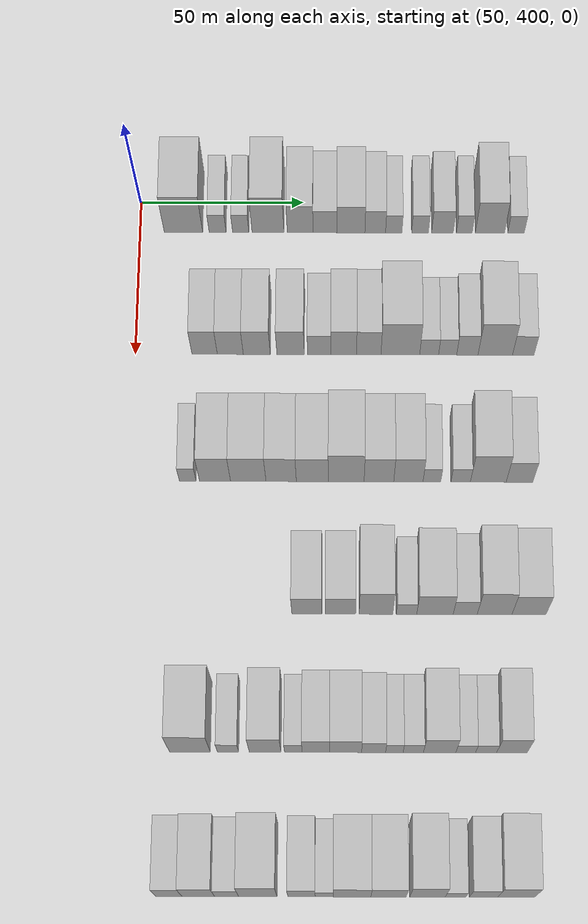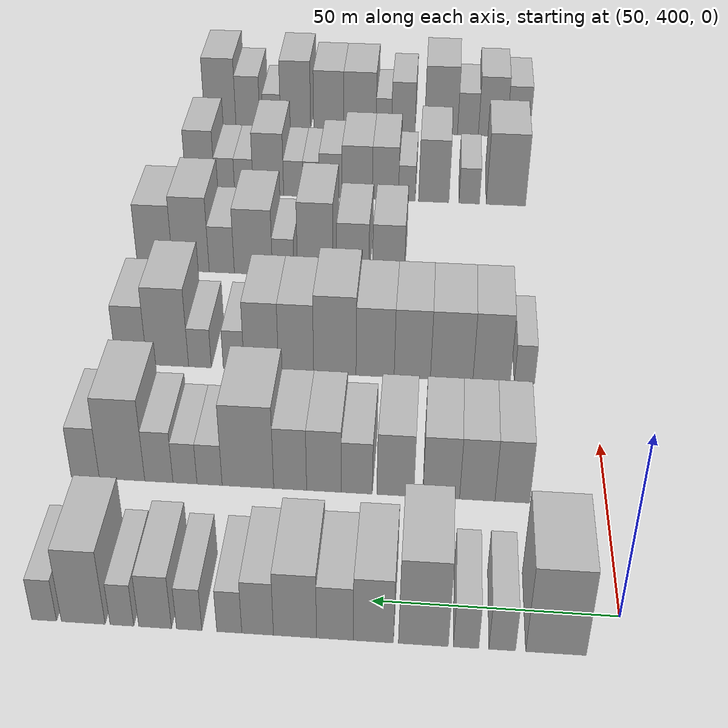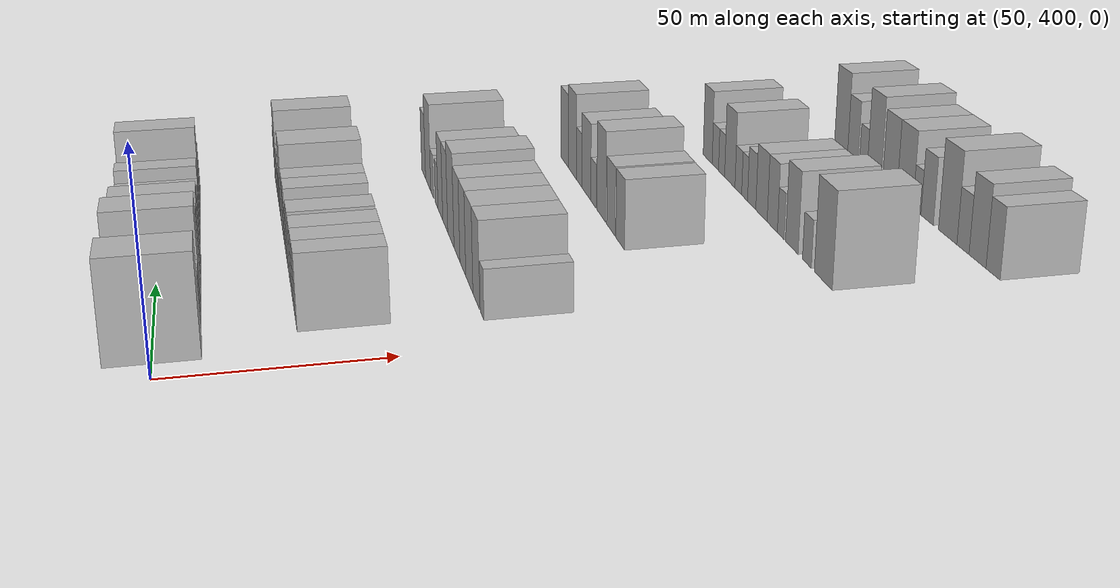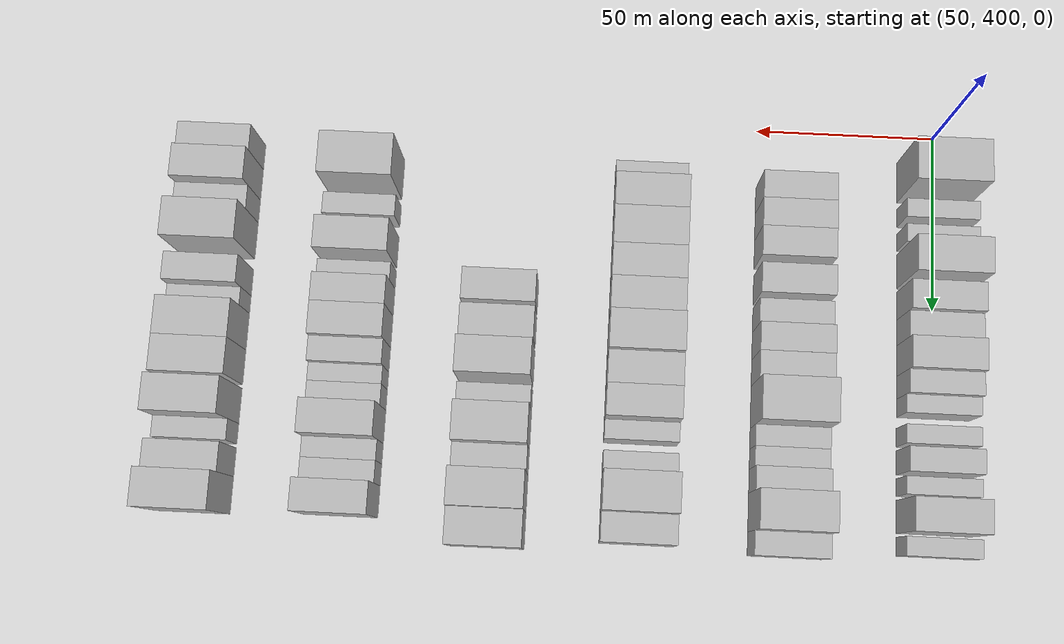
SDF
<sdf version="1.6">
 <world name="default">
  <model name="building_114">
   <static>1</static>
   <pose>50.0000 413.3444 0 0.000000 0.000000 0.000000</pose>
   <link name="link">
    <pose>0 0 12.00 0 0 0</pose>
    <collision name="collision"><geometry><box><size>20.0000 11.7695 24.0000</size></box></geometry></collision>
    <visual name="visual">
     <cast_shadows>0</cast_shadows>
     <geometry><box><size>20.0000 11.7695 24.0000</size></box></geometry>
     <material>
      <script>
       <uri>model://HANNAS_wall/materials/scripts</uri>
       <uri>model://HANNAS_wall/materials/textures</uri>
       <name>vrc/HANNAS_wall</name>
      </script>
     </material>
    </visual>
   </link>
  </model>
  <model name="building_115">
   <static>1</static>
   <pose>50.0000 423.8214 0 0.000000 0.000000 0.000000</pose>
   <link name="link">
    <pose>0 0 6.00 0 0 0</pose>
    <collision name="collision"><geometry><box><size>20.0000 5.1846 12.0000</size></box></geometry></collision>
    <visual name="visual">
     <cast_shadows>0</cast_shadows>
     <geometry><box><size>20.0000 5.1846 12.0000</size></box></geometry>
     <material>
      <script>
       <uri>model://HANNAS_wall/materials/scripts</uri>
       <uri>model://HANNAS_wall/materials/textures</uri>
       <name>vrc/HANNAS_wall</name>
      </script>
     </material>
    </visual>
   </link>
  </model>
  <model name="building_116">
   <static>1</static>
   <pose>50.0000 430.8988 0 0.000000 0.000000 0.000000</pose>
   <link name="link">
    <pose>0 0 6.00 0 0 0</pose>
    <collision name="collision"><geometry><box><size>20.0000 4.9700 12.0000</size></box></geometry></collision>
    <visual name="visual">
     <cast_shadows>0</cast_shadows>
     <geometry><box><size>20.0000 4.9700 12.0000</size></box></geometry>
     <material>
      <script>
       <uri>model://HANNAS_wall/materials/scripts</uri>
       <uri>model://HANNAS_wall/materials/textures</uri>
       <name>vrc/HANNAS_wall</name>
      </script>
     </material>
    </visual>
   </link>
  </model>
  <model name="building_117">
   <static>1</static>
   <pose>50.0000 439.2780 0 0.000000 0.000000 0.000000</pose>
   <link name="link">
    <pose>0 0 12.00 0 0 0</pose>
    <collision name="collision"><geometry><box><size>20.0000 9.7884 24.0000</size></box></geometry></collision>
    <visual name="visual">
     <cast_shadows>0</cast_shadows>
     <geometry><box><size>20.0000 9.7884 24.0000</size></box></geometry>
     <material>
      <script>
       <uri>model://HANNAS_wall/materials/scripts</uri>
       <uri>model://HANNAS_wall/materials/textures</uri>
       <name>vrc/HANNAS_wall</name>
      </script>
     </material>
    </visual>
   </link>
  </model>
  <model name="building_118">
   <static>1</static>
   <pose>50.0000 449.1465 0 0.000000 0.000000 0.000000</pose>
   <link name="link">
    <pose>0 0 9.00 0 0 0</pose>
    <collision name="collision"><geometry><box><size>20.0000 7.9485 18.0000</size></box></geometry></collision>
    <visual name="visual">
     <cast_shadows>0</cast_shadows>
     <geometry><box><size>20.0000 7.9485 18.0000</size></box></geometry>
     <material>
      <script>
       <uri>model://HANNAS_wall/materials/scripts</uri>
       <uri>model://HANNAS_wall/materials/textures</uri>
       <name>vrc/HANNAS_wall</name>
      </script>
     </material>
    </visual>
   </link>
  </model>
  <model name="building_119">
   <static>1</static>
   <pose>50.0000 456.7492 0 0.000000 0.000000 0.000000</pose>
   <link name="link">
    <pose>0 0 7.50 0 0 0</pose>
    <collision name="collision"><geometry><box><size>20.0000 7.2570 15.0000</size></box></geometry></collision>
    <visual name="visual">
     <cast_shadows>0</cast_shadows>
     <geometry><box><size>20.0000 7.2570 15.0000</size></box></geometry>
     <material>
      <script>
       <uri>model://HANNAS_wall/materials/scripts</uri>
       <uri>model://HANNAS_wall/materials/textures</uri>
       <name>vrc/HANNAS_wall</name>
      </script>
     </material>
    </visual>
   </link>
  </model>
  <model name="building_120">
   <static>1</static>
   <pose>50.0000 464.6672 0 0.000000 0.000000 0.000000</pose>
   <link name="link">
    <pose>0 0 9.00 0 0 0</pose>
    <collision name="collision"><geometry><box><size>20.0000 8.5791 18.0000</size></box></geometry></collision>
    <visual name="visual">
     <cast_shadows>0</cast_shadows>
     <geometry><box><size>20.0000 8.5791 18.0000</size></box></geometry>
     <material>
      <script>
       <uri>model://HANNAS_wall/materials/scripts</uri>
       <uri>model://HANNAS_wall/materials/textures</uri>
       <name>vrc/HANNAS_wall</name>
      </script>
     </material>
    </visual>
   </link>
  </model>
  <model name="building_121">
   <static>1</static>
   <pose>50.0000 472.1219 0 0.000000 0.000000 0.000000</pose>
   <link name="link">
    <pose>0 0 7.50 0 0 0</pose>
    <collision name="collision"><geometry><box><size>20.0000 6.3302 15.0000</size></box></geometry></collision>
    <visual name="visual">
     <cast_shadows>0</cast_shadows>
     <geometry><box><size>20.0000 6.3302 15.0000</size></box></geometry>
     <material>
      <script>
       <uri>model://HANNAS_wall/materials/scripts</uri>
       <uri>model://HANNAS_wall/materials/textures</uri>
       <name>vrc/HANNAS_wall</name>
      </script>
     </material>
    </visual>
   </link>
  </model>
  <model name="building_122">
   <static>1</static>
   <pose>50.0000 477.7926 0 0.000000 0.000000 0.000000</pose>
   <link name="link">
    <pose>0 0 6.00 0 0 0</pose>
    <collision name="collision"><geometry><box><size>20.0000 5.0114 12.0000</size></box></geometry></collision>
    <visual name="visual">
     <cast_shadows>0</cast_shadows>
     <geometry><box><size>20.0000 5.0114 12.0000</size></box></geometry>
     <material>
      <script>
       <uri>model://HANNAS_wall/materials/scripts</uri>
       <uri>model://HANNAS_wall/materials/textures</uri>
       <name>vrc/HANNAS_wall</name>
      </script>
     </material>
    </visual>
   </link>
  </model>
  <model name="building_123">
   <static>1</static>
   <pose>50.0000 485.8508 0 0.000000 0.000000 0.000000</pose>
   <link name="link">
    <pose>0 0 6.00 0 0 0</pose>
    <collision name="collision"><geometry><box><size>20.0000 5.1051 12.0000</size></box></geometry></collision>
    <visual name="visual">
     <cast_shadows>0</cast_shadows>
     <geometry><box><size>20.0000 5.1051 12.0000</size></box></geometry>
     <material>
      <script>
       <uri>model://HANNAS_wall/materials/scripts</uri>
       <uri>model://HANNAS_wall/materials/textures</uri>
       <name>vrc/HANNAS_wall</name>
      </script>
     </material>
    </visual>
   </link>
  </model>
  <model name="building_124">
   <static>1</static>
   <pose>50.0000 492.7127 0 0.000000 0.000000 0.000000</pose>
   <link name="link">
    <pose>0 0 7.50 0 0 0</pose>
    <collision name="collision"><geometry><box><size>20.0000 6.6187 15.0000</size></box></geometry></collision>
    <visual name="visual">
     <cast_shadows>0</cast_shadows>
     <geometry><box><size>20.0000 6.6187 15.0000</size></box></geometry>
     <material>
      <script>
       <uri>model://HANNAS_wall/materials/scripts</uri>
       <uri>model://HANNAS_wall/materials/textures</uri>
       <name>vrc/HANNAS_wall</name>
      </script>
     </material>
    </visual>
   </link>
  </model>
  <model name="building_125">
   <static>1</static>
   <pose>50.0000 499.4274 0 0.000000 0.000000 0.000000</pose>
   <link name="link">
    <pose>0 0 6.00 0 0 0</pose>
    <collision name="collision"><geometry><box><size>20.0000 4.8108 12.0000</size></box></geometry></collision>
    <visual name="visual">
     <cast_shadows>0</cast_shadows>
     <geometry><box><size>20.0000 4.8108 12.0000</size></box></geometry>
     <material>
      <script>
       <uri>model://HANNAS_wall/materials/scripts</uri>
       <uri>model://HANNAS_wall/materials/textures</uri>
       <name>vrc/HANNAS_wall</name>
      </script>
     </material>
    </visual>
   </link>
  </model>
  <model name="building_126">
   <static>1</static>
   <pose>50.0000 507.2789 0 0.000000 0.000000 0.000000</pose>
   <link name="link">
    <pose>0 0 10.50 0 0 0</pose>
    <collision name="collision"><geometry><box><size>20.0000 8.8922 21.0000</size></box></geometry></collision>
    <visual name="visual">
     <cast_shadows>0</cast_shadows>
     <geometry><box><size>20.0000 8.8922 21.0000</size></box></geometry>
     <material>
      <script>
       <uri>model://HANNAS_wall/materials/scripts</uri>
       <uri>model://HANNAS_wall/materials/textures</uri>
       <name>vrc/HANNAS_wall</name>
      </script>
     </material>
    </visual>
   </link>
  </model>
  <model name="building_127">
   <static>1</static>
   <pose>50.0000 515.2594 0 0.000000 0.000000 0.000000</pose>
   <link name="link">
    <pose>0 0 6.00 0 0 0</pose>
    <collision name="collision"><geometry><box><size>20.0000 5.0689 12.0000</size></box></geometry></collision>
    <visual name="visual">
     <cast_shadows>0</cast_shadows>
     <geometry><box><size>20.0000 5.0689 12.0000</size></box></geometry>
     <material>
      <script>
       <uri>model://HANNAS_wall/materials/scripts</uri>
       <uri>model://HANNAS_wall/materials/textures</uri>
       <name>vrc/HANNAS_wall</name>
      </script>
     </material>
    </visual>
   </link>
  </model>
  <model name="building_239">
   <static>1</static>
   <pose>90.0000 420.7728 0 0.000000 0.000000 0.000000</pose>
   <link name="link">
    <pose>0 0 9.00 0 0 0</pose>
    <collision name="collision"><geometry><box><size>20.0000 7.6062 18.0000</size></box></geometry></collision>
    <visual name="visual">
     <cast_shadows>0</cast_shadows>
     <geometry><box><size>20.0000 7.6062 18.0000</size></box></geometry>
     <material>
      <script>
       <uri>model://HANNAS_wall/materials/scripts</uri>
       <uri>model://HANNAS_wall/materials/textures</uri>
       <name>vrc/HANNAS_wall</name>
      </script>
     </material>
    </visual>
   </link>
  </model>
  <model name="building_240">
   <static>1</static>
   <pose>90.0000 428.4767 0 0.000000 0.000000 0.000000</pose>
   <link name="link">
    <pose>0 0 9.00 0 0 0</pose>
    <collision name="collision"><geometry><box><size>20.0000 7.8017 18.0000</size></box></geometry></collision>
    <visual name="visual">
     <cast_shadows>0</cast_shadows>
     <geometry><box><size>20.0000 7.8017 18.0000</size></box></geometry>
     <material>
      <script>
       <uri>model://HANNAS_wall/materials/scripts</uri>
       <uri>model://HANNAS_wall/materials/textures</uri>
       <name>vrc/HANNAS_wall</name>
      </script>
     </material>
    </visual>
   </link>
  </model>
  <model name="building_241">
   <static>1</static>
   <pose>90.0000 436.4355 0 0.000000 0.000000 0.000000</pose>
   <link name="link">
    <pose>0 0 9.00 0 0 0</pose>
    <collision name="collision"><geometry><box><size>20.0000 8.1158 18.0000</size></box></geometry></collision>
    <visual name="visual">
     <cast_shadows>0</cast_shadows>
     <geometry><box><size>20.0000 8.1158 18.0000</size></box></geometry>
     <material>
      <script>
       <uri>model://HANNAS_wall/materials/scripts</uri>
       <uri>model://HANNAS_wall/materials/textures</uri>
       <name>vrc/HANNAS_wall</name>
      </script>
     </material>
    </visual>
   </link>
  </model>
  <model name="building_242">
   <static>1</static>
   <pose>90.0000 446.6030 0 0.000000 0.000000 0.000000</pose>
   <link name="link">
    <pose>0 0 9.00 0 0 0</pose>
    <collision name="collision"><geometry><box><size>20.0000 8.2194 18.0000</size></box></geometry></collision>
    <visual name="visual">
     <cast_shadows>0</cast_shadows>
     <geometry><box><size>20.0000 8.2194 18.0000</size></box></geometry>
     <material>
      <script>
       <uri>model://HANNAS_wall/materials/scripts</uri>
       <uri>model://HANNAS_wall/materials/textures</uri>
       <name>vrc/HANNAS_wall</name>
      </script>
     </material>
    </visual>
   </link>
  </model>
  <model name="building_243">
   <static>1</static>
   <pose>90.0000 455.1964 0 0.000000 0.000000 0.000000</pose>
   <link name="link">
    <pose>0 0 7.50 0 0 0</pose>
    <collision name="collision"><geometry><box><size>20.0000 6.9674 15.0000</size></box></geometry></collision>
    <visual name="visual">
     <cast_shadows>0</cast_shadows>
     <geometry><box><size>20.0000 6.9674 15.0000</size></box></geometry>
     <material>
      <script>
       <uri>model://HANNAS_wall/materials/scripts</uri>
       <uri>model://HANNAS_wall/materials/textures</uri>
       <name>vrc/HANNAS_wall</name>
      </script>
     </material>
    </visual>
   </link>
  </model>
  <model name="building_244">
   <static>1</static>
   <pose>90.0000 462.5175 0 0.000000 0.000000 0.000000</pose>
   <link name="link">
    <pose>0 0 9.00 0 0 0</pose>
    <collision name="collision"><geometry><box><size>20.0000 7.6748 18.0000</size></box></geometry></collision>
    <visual name="visual">
     <cast_shadows>0</cast_shadows>
     <geometry><box><size>20.0000 7.6748 18.0000</size></box></geometry>
     <material>
      <script>
       <uri>model://HANNAS_wall/materials/scripts</uri>
       <uri>model://HANNAS_wall/materials/textures</uri>
       <name>vrc/HANNAS_wall</name>
      </script>
     </material>
    </visual>
   </link>
  </model>
  <model name="building_245">
   <static>1</static>
   <pose>90.0000 470.0411 0 0.000000 0.000000 0.000000</pose>
   <link name="link">
    <pose>0 0 9.00 0 0 0</pose>
    <collision name="collision"><geometry><box><size>20.0000 7.3722 18.0000</size></box></geometry></collision>
    <visual name="visual">
     <cast_shadows>0</cast_shadows>
     <geometry><box><size>20.0000 7.3722 18.0000</size></box></geometry>
     <material>
      <script>
       <uri>model://HANNAS_wall/materials/scripts</uri>
       <uri>model://HANNAS_wall/materials/textures</uri>
       <name>vrc/HANNAS_wall</name>
      </script>
     </material>
    </visual>
   </link>
  </model>
  <model name="building_246">
   <static>1</static>
   <pose>90.0000 479.5343 0 0.000000 0.000000 0.000000</pose>
   <link name="link">
    <pose>0 0 12.00 0 0 0</pose>
    <collision name="collision"><geometry><box><size>20.0000 11.6142 24.0000</size></box></geometry></collision>
    <visual name="visual">
     <cast_shadows>0</cast_shadows>
     <geometry><box><size>20.0000 11.6142 24.0000</size></box></geometry>
     <material>
      <script>
       <uri>model://HANNAS_wall/materials/scripts</uri>
       <uri>model://HANNAS_wall/materials/textures</uri>
       <name>vrc/HANNAS_wall</name>
      </script>
     </material>
    </visual>
   </link>
  </model>
  <model name="building_247">
   <static>1</static>
   <pose>90.0000 488.1842 0 0.000000 0.000000 0.000000</pose>
   <link name="link">
    <pose>0 0 6.00 0 0 0</pose>
    <collision name="collision"><geometry><box><size>20.0000 5.6856 12.0000</size></box></geometry></collision>
    <visual name="visual">
     <cast_shadows>0</cast_shadows>
     <geometry><box><size>20.0000 5.6856 12.0000</size></box></geometry>
     <material>
      <script>
       <uri>model://HANNAS_wall/materials/scripts</uri>
       <uri>model://HANNAS_wall/materials/textures</uri>
       <name>vrc/HANNAS_wall</name>
      </script>
     </material>
    </visual>
   </link>
  </model>
  <model name="building_248">
   <static>1</static>
   <pose>90.0000 493.7478 0 0.000000 0.000000 0.000000</pose>
   <link name="link">
    <pose>0 0 6.00 0 0 0</pose>
    <collision name="collision"><geometry><box><size>20.0000 5.4416 12.0000</size></box></geometry></collision>
    <visual name="visual">
     <cast_shadows>0</cast_shadows>
     <geometry><box><size>20.0000 5.4416 12.0000</size></box></geometry>
     <material>
      <script>
       <uri>model://HANNAS_wall/materials/scripts</uri>
       <uri>model://HANNAS_wall/materials/textures</uri>
       <name>vrc/HANNAS_wall</name>
      </script>
     </material>
    </visual>
   </link>
  </model>
  <model name="building_249">
   <static>1</static>
   <pose>90.0000 499.6678 0 0.000000 0.000000 0.000000</pose>
   <link name="link">
    <pose>0 0 7.50 0 0 0</pose>
    <collision name="collision"><geometry><box><size>20.0000 6.3983 15.0000</size></box></geometry></collision>
    <visual name="visual">
     <cast_shadows>0</cast_shadows>
     <geometry><box><size>20.0000 6.3983 15.0000</size></box></geometry>
     <material>
      <script>
       <uri>model://HANNAS_wall/materials/scripts</uri>
       <uri>model://HANNAS_wall/materials/textures</uri>
       <name>vrc/HANNAS_wall</name>
      </script>
     </material>
    </visual>
   </link>
  </model>
  <model name="building_250">
   <static>1</static>
   <pose>90.0000 508.0538 0 0.000000 0.000000 0.000000</pose>
   <link name="link">
    <pose>0 0 12.00 0 0 0</pose>
    <collision name="collision"><geometry><box><size>20.0000 10.3737 24.0000</size></box></geometry></collision>
    <visual name="visual">
     <cast_shadows>0</cast_shadows>
     <geometry><box><size>20.0000 10.3737 24.0000</size></box></geometry>
     <material>
      <script>
       <uri>model://HANNAS_wall/materials/scripts</uri>
       <uri>model://HANNAS_wall/materials/textures</uri>
       <name>vrc/HANNAS_wall</name>
      </script>
     </material>
    </visual>
   </link>
  </model>
  <model name="building_251">
   <static>1</static>
   <pose>90.0000 516.4633 0 0.000000 0.000000 0.000000</pose>
   <link name="link">
    <pose>0 0 7.50 0 0 0</pose>
    <collision name="collision"><geometry><box><size>20.0000 6.4452 15.0000</size></box></geometry></collision>
    <visual name="visual">
     <cast_shadows>0</cast_shadows>
     <geometry><box><size>20.0000 6.4452 15.0000</size></box></geometry>
     <material>
      <script>
       <uri>model://HANNAS_wall/materials/scripts</uri>
       <uri>model://HANNAS_wall/materials/textures</uri>
       <name>vrc/HANNAS_wall</name>
      </script>
     </material>
    </visual>
   </link>
  </model>
  <model name="building_378">
   <static>1</static>
   <pose>130.0000 416.7579 0 0.000000 0.000000 0.000000</pose>
   <link name="link">
    <pose>0 0 6.00 0 0 0</pose>
    <collision name="collision"><geometry><box><size>20.0000 4.9222 12.0000</size></box></geometry></collision>
    <visual name="visual">
     <cast_shadows>0</cast_shadows>
     <geometry><box><size>20.0000 4.9222 12.0000</size></box></geometry>
     <material>
      <script>
       <uri>model://HANNAS_wall/materials/scripts</uri>
       <uri>model://HANNAS_wall/materials/textures</uri>
       <name>vrc/HANNAS_wall</name>
      </script>
     </material>
    </visual>
   </link>
  </model>
  <model name="building_379">
   <static>1</static>
   <pose>130.0000 424.7732 0 0.000000 0.000000 0.000000</pose>
   <link name="link">
    <pose>0 0 10.50 0 0 0</pose>
    <collision name="collision"><geometry><box><size>20.0000 9.1085 21.0000</size></box></geometry></collision>
    <visual name="visual">
     <cast_shadows>0</cast_shadows>
     <geometry><box><size>20.0000 9.1085 21.0000</size></box></geometry>
     <material>
      <script>
       <uri>model://HANNAS_wall/materials/scripts</uri>
       <uri>model://HANNAS_wall/materials/textures</uri>
       <name>vrc/HANNAS_wall</name>
      </script>
     </material>
    </visual>
   </link>
  </model>
  <model name="building_380">
   <static>1</static>
   <pose>130.0000 434.5409 0 0.000000 0.000000 0.000000</pose>
   <link name="link">
    <pose>0 0 10.50 0 0 0</pose>
    <collision name="collision"><geometry><box><size>20.0000 10.4268 21.0000</size></box></geometry></collision>
    <visual name="visual">
     <cast_shadows>0</cast_shadows>
     <geometry><box><size>20.0000 10.4268 21.0000</size></box></geometry>
     <material>
      <script>
       <uri>model://HANNAS_wall/materials/scripts</uri>
       <uri>model://HANNAS_wall/materials/textures</uri>
       <name>vrc/HANNAS_wall</name>
      </script>
     </material>
    </visual>
   </link>
  </model>
  <model name="building_381">
   <static>1</static>
   <pose>130.0000 444.2200 0 0.000000 0.000000 0.000000</pose>
   <link name="link">
    <pose>0 0 10.50 0 0 0</pose>
    <collision name="collision"><geometry><box><size>20.0000 8.9314 21.0000</size></box></geometry></collision>
    <visual name="visual">
     <cast_shadows>0</cast_shadows>
     <geometry><box><size>20.0000 8.9314 21.0000</size></box></geometry>
     <material>
      <script>
       <uri>model://HANNAS_wall/materials/scripts</uri>
       <uri>model://HANNAS_wall/materials/textures</uri>
       <name>vrc/HANNAS_wall</name>
      </script>
     </material>
    </visual>
   </link>
  </model>
  <model name="building_382">
   <static>1</static>
   <pose>130.0000 453.3901 0 0.000000 0.000000 0.000000</pose>
   <link name="link">
    <pose>0 0 10.50 0 0 0</pose>
    <collision name="collision"><geometry><box><size>20.0000 9.4088 21.0000</size></box></geometry></collision>
    <visual name="visual">
     <cast_shadows>0</cast_shadows>
     <geometry><box><size>20.0000 9.4088 21.0000</size></box></geometry>
     <material>
      <script>
       <uri>model://HANNAS_wall/materials/scripts</uri>
       <uri>model://HANNAS_wall/materials/textures</uri>
       <name>vrc/HANNAS_wall</name>
      </script>
     </material>
    </visual>
   </link>
  </model>
  <model name="building_383">
   <static>1</static>
   <pose>130.0000 463.3483 0 0.000000 0.000000 0.000000</pose>
   <link name="link">
    <pose>0 0 12.00 0 0 0</pose>
    <collision name="collision"><geometry><box><size>20.0000 10.5075 24.0000</size></box></geometry></collision>
    <visual name="visual">
     <cast_shadows>0</cast_shadows>
     <geometry><box><size>20.0000 10.5075 24.0000</size></box></geometry>
     <material>
      <script>
       <uri>model://HANNAS_wall/materials/scripts</uri>
       <uri>model://HANNAS_wall/materials/textures</uri>
       <name>vrc/HANNAS_wall</name>
      </script>
     </material>
    </visual>
   </link>
  </model>
  <model name="building_384">
   <static>1</static>
   <pose>130.0000 472.9670 0 0.000000 0.000000 0.000000</pose>
   <link name="link">
    <pose>0 0 10.50 0 0 0</pose>
    <collision name="collision"><geometry><box><size>20.0000 8.7300 21.0000</size></box></geometry></collision>
    <visual name="visual">
     <cast_shadows>0</cast_shadows>
     <geometry><box><size>20.0000 8.7300 21.0000</size></box></geometry>
     <material>
      <script>
       <uri>model://HANNAS_wall/materials/scripts</uri>
       <uri>model://HANNAS_wall/materials/textures</uri>
       <name>vrc/HANNAS_wall</name>
      </script>
     </material>
    </visual>
   </link>
  </model>
  <model name="building_385">
   <static>1</static>
   <pose>130.0000 481.6348 0 0.000000 0.000000 0.000000</pose>
   <link name="link">
    <pose>0 0 10.50 0 0 0</pose>
    <collision name="collision"><geometry><box><size>20.0000 8.6056 21.0000</size></box></geometry></collision>
    <visual name="visual">
     <cast_shadows>0</cast_shadows>
     <geometry><box><size>20.0000 8.6056 21.0000</size></box></geometry>
     <material>
      <script>
       <uri>model://HANNAS_wall/materials/scripts</uri>
       <uri>model://HANNAS_wall/materials/textures</uri>
       <name>vrc/HANNAS_wall</name>
      </script>
     </material>
    </visual>
   </link>
  </model>
  <model name="building_386">
   <static>1</static>
   <pose>130.0000 488.5477 0 0.000000 0.000000 0.000000</pose>
   <link name="link">
    <pose>0 0 6.00 0 0 0</pose>
    <collision name="collision"><geometry><box><size>20.0000 5.2201 12.0000</size></box></geometry></collision>
    <visual name="visual">
     <cast_shadows>0</cast_shadows>
     <geometry><box><size>20.0000 5.2201 12.0000</size></box></geometry>
     <material>
      <script>
       <uri>model://HANNAS_wall/materials/scripts</uri>
       <uri>model://HANNAS_wall/materials/textures</uri>
       <name>vrc/HANNAS_wall</name>
      </script>
     </material>
    </visual>
   </link>
  </model>
  <model name="building_387">
   <static>1</static>
   <pose>130.0000 497.0153 0 0.000000 0.000000 0.000000</pose>
   <link name="link">
    <pose>0 0 6.00 0 0 0</pose>
    <collision name="collision"><geometry><box><size>20.0000 5.7150 12.0000</size></box></geometry></collision>
    <visual name="visual">
     <cast_shadows>0</cast_shadows>
     <geometry><box><size>20.0000 5.7150 12.0000</size></box></geometry>
     <material>
      <script>
       <uri>model://HANNAS_wall/materials/scripts</uri>
       <uri>model://HANNAS_wall/materials/textures</uri>
       <name>vrc/HANNAS_wall</name>
      </script>
     </material>
    </visual>
   </link>
  </model>
  <model name="building_388">
   <static>1</static>
   <pose>130.0000 505.1360 0 0.000000 0.000000 0.000000</pose>
   <link name="link">
    <pose>0 0 12.00 0 0 0</pose>
    <collision name="collision"><geometry><box><size>20.0000 10.5265 24.0000</size></box></geometry></collision>
    <visual name="visual">
     <cast_shadows>0</cast_shadows>
     <geometry><box><size>20.0000 10.5265 24.0000</size></box></geometry>
     <material>
      <script>
       <uri>model://HANNAS_wall/materials/scripts</uri>
       <uri>model://HANNAS_wall/materials/textures</uri>
       <name>vrc/HANNAS_wall</name>
      </script>
     </material>
    </visual>
   </link>
  </model>
  <model name="building_389">
   <static>1</static>
   <pose>130.0000 514.3312 0 0.000000 0.000000 0.000000</pose>
   <link name="link">
    <pose>0 0 9.00 0 0 0</pose>
    <collision name="collision"><geometry><box><size>20.0000 7.8638 18.0000</size></box></geometry></collision>
    <visual name="visual">
     <cast_shadows>0</cast_shadows>
     <geometry><box><size>20.0000 7.8638 18.0000</size></box></geometry>
     <material>
      <script>
       <uri>model://HANNAS_wall/materials/scripts</uri>
       <uri>model://HANNAS_wall/materials/textures</uri>
       <name>vrc/HANNAS_wall</name>
      </script>
     </material>
    </visual>
   </link>
  </model>
  <model name="building_514">
   <static>1</static>
   <pose>170.0000 452.0891 0 0.000000 0.000000 0.000000</pose>
   <link name="link">
    <pose>0 0 9.00 0 0 0</pose>
    <collision name="collision"><geometry><box><size>20.0000 8.6475 18.0000</size></box></geometry></collision>
    <visual name="visual">
     <cast_shadows>0</cast_shadows>
     <geometry><box><size>20.0000 8.6475 18.0000</size></box></geometry>
     <material>
      <script>
       <uri>model://HANNAS_wall/materials/scripts</uri>
       <uri>model://HANNAS_wall/materials/textures</uri>
       <name>vrc/HANNAS_wall</name>
      </script>
     </material>
    </visual>
   </link>
  </model>
  <model name="building_515">
   <static>1</static>
   <pose>170.0000 461.7746 0 0.000000 0.000000 0.000000</pose>
   <link name="link">
    <pose>0 0 9.00 0 0 0</pose>
    <collision name="collision"><geometry><box><size>20.0000 8.7236 18.0000</size></box></geometry></collision>
    <visual name="visual">
     <cast_shadows>0</cast_shadows>
     <geometry><box><size>20.0000 8.7236 18.0000</size></box></geometry>
     <material>
      <script>
       <uri>model://HANNAS_wall/materials/scripts</uri>
       <uri>model://HANNAS_wall/materials/textures</uri>
       <name>vrc/HANNAS_wall</name>
      </script>
     </material>
    </visual>
   </link>
  </model>
  <model name="building_516">
   <static>1</static>
   <pose>170.0000 471.9841 0 0.000000 0.000000 0.000000</pose>
   <link name="link">
    <pose>0 0 12.00 0 0 0</pose>
    <collision name="collision"><geometry><box><size>20.0000 9.6954 24.0000</size></box></geometry></collision>
    <visual name="visual">
     <cast_shadows>0</cast_shadows>
     <geometry><box><size>20.0000 9.6954 24.0000</size></box></geometry>
     <material>
      <script>
       <uri>model://HANNAS_wall/materials/scripts</uri>
       <uri>model://HANNAS_wall/materials/textures</uri>
       <name>vrc/HANNAS_wall</name>
      </script>
     </material>
    </visual>
   </link>
  </model>
  <model name="building_517">
   <static>1</static>
   <pose>170.0000 480.7651 0 0.000000 0.000000 0.000000</pose>
   <link name="link">
    <pose>0 0 6.00 0 0 0</pose>
    <collision name="collision"><geometry><box><size>20.0000 5.8665 12.0000</size></box></geometry></collision>
    <visual name="visual">
     <cast_shadows>0</cast_shadows>
     <geometry><box><size>20.0000 5.8665 12.0000</size></box></geometry>
     <material>
      <script>
       <uri>model://HANNAS_wall/materials/scripts</uri>
       <uri>model://HANNAS_wall/materials/textures</uri>
       <name>vrc/HANNAS_wall</name>
      </script>
     </material>
    </visual>
   </link>
  </model>
  <model name="building_518">
   <static>1</static>
   <pose>170.0000 488.9451 0 0.000000 0.000000 0.000000</pose>
   <link name="link">
    <pose>0 0 10.50 0 0 0</pose>
    <collision name="collision"><geometry><box><size>20.0000 10.4935 21.0000</size></box></geometry></collision>
    <visual name="visual">
     <cast_shadows>0</cast_shadows>
     <geometry><box><size>20.0000 10.4935 21.0000</size></box></geometry>
     <material>
      <script>
       <uri>model://HANNAS_wall/materials/scripts</uri>
       <uri>model://HANNAS_wall/materials/textures</uri>
       <name>vrc/HANNAS_wall</name>
      </script>
     </material>
    </visual>
   </link>
  </model>
  <model name="building_519">
   <static>1</static>
   <pose>170.0000 497.6574 0 0.000000 0.000000 0.000000</pose>
   <link name="link">
    <pose>0 0 7.50 0 0 0</pose>
    <collision name="collision"><geometry><box><size>20.0000 6.9311 15.0000</size></box></geometry></collision>
    <visual name="visual">
     <cast_shadows>0</cast_shadows>
     <geometry><box><size>20.0000 6.9311 15.0000</size></box></geometry>
     <material>
      <script>
       <uri>model://HANNAS_wall/materials/scripts</uri>
       <uri>model://HANNAS_wall/materials/textures</uri>
       <name>vrc/HANNAS_wall</name>
      </script>
     </material>
    </visual>
   </link>
  </model>
  <model name="building_520">
   <static>1</static>
   <pose>170.0000 506.1292 0 0.000000 0.000000 0.000000</pose>
   <link name="link">
    <pose>0 0 12.00 0 0 0</pose>
    <collision name="collision"><geometry><box><size>20.0000 10.0124 24.0000</size></box></geometry></collision>
    <visual name="visual">
     <cast_shadows>0</cast_shadows>
     <geometry><box><size>20.0000 10.0124 24.0000</size></box></geometry>
     <material>
      <script>
       <uri>model://HANNAS_wall/materials/scripts</uri>
       <uri>model://HANNAS_wall/materials/textures</uri>
       <name>vrc/HANNAS_wall</name>
      </script>
     </material>
    </visual>
   </link>
  </model>
  <model name="building_521">
   <static>1</static>
   <pose>170.0000 516.0303 0 0.000000 0.000000 0.000000</pose>
   <link name="link">
    <pose>0 0 10.50 0 0 0</pose>
    <collision name="collision"><geometry><box><size>20.0000 9.7898 21.0000</size></box></geometry></collision>
    <visual name="visual">
     <cast_shadows>0</cast_shadows>
     <geometry><box><size>20.0000 9.7898 21.0000</size></box></geometry>
     <material>
      <script>
       <uri>model://HANNAS_wall/materials/scripts</uri>
       <uri>model://HANNAS_wall/materials/textures</uri>
       <name>vrc/HANNAS_wall</name>
      </script>
     </material>
    </visual>
   </link>
  </model>
  <model name="building_641">
   <static>1</static>
   <pose>210.0000 419.4413 0 0.000000 0.000000 0.000000</pose>
   <link name="link">
    <pose>0 0 12.00 0 0 0</pose>
    <collision name="collision"><geometry><box><size>20.0000 11.4983 24.0000</size></box></geometry></collision>
    <visual name="visual">
     <cast_shadows>0</cast_shadows>
     <geometry><box><size>20.0000 11.4983 24.0000</size></box></geometry>
     <material>
      <script>
       <uri>model://HANNAS_wall/materials/scripts</uri>
       <uri>model://HANNAS_wall/materials/textures</uri>
       <name>vrc/HANNAS_wall</name>
      </script>
     </material>
    </visual>
   </link>
  </model>
  <model name="building_642">
   <static>1</static>
   <pose>210.0000 430.1866 0 0.000000 0.000000 0.000000</pose>
   <link name="link">
    <pose>0 0 6.00 0 0 0</pose>
    <collision name="collision"><geometry><box><size>20.0000 5.9923 12.0000</size></box></geometry></collision>
    <visual name="visual">
     <cast_shadows>0</cast_shadows>
     <geometry><box><size>20.0000 5.9923 12.0000</size></box></geometry>
     <material>
      <script>
       <uri>model://HANNAS_wall/materials/scripts</uri>
       <uri>model://HANNAS_wall/materials/textures</uri>
       <name>vrc/HANNAS_wall</name>
      </script>
     </material>
    </visual>
   </link>
  </model>
  <model name="building_643">
   <static>1</static>
   <pose>210.0000 440.6480 0 0.000000 0.000000 0.000000</pose>
   <link name="link">
    <pose>0 0 10.50 0 0 0</pose>
    <collision name="collision"><geometry><box><size>20.0000 8.9306 21.0000</size></box></geometry></collision>
    <visual name="visual">
     <cast_shadows>0</cast_shadows>
     <geometry><box><size>20.0000 8.9306 21.0000</size></box></geometry>
     <material>
      <script>
       <uri>model://HANNAS_wall/materials/scripts</uri>
       <uri>model://HANNAS_wall/materials/textures</uri>
       <name>vrc/HANNAS_wall</name>
      </script>
     </material>
    </visual>
   </link>
  </model>
  <model name="building_644">
   <static>1</static>
   <pose>210.0000 448.5983 0 0.000000 0.000000 0.000000</pose>
   <link name="link">
    <pose>0 0 6.00 0 0 0</pose>
    <collision name="collision"><geometry><box><size>20.0000 4.9699 12.0000</size></box></geometry></collision>
    <visual name="visual">
     <cast_shadows>0</cast_shadows>
     <geometry><box><size>20.0000 4.9699 12.0000</size></box></geometry>
     <material>
      <script>
       <uri>model://HANNAS_wall/materials/scripts</uri>
       <uri>model://HANNAS_wall/materials/textures</uri>
       <name>vrc/HANNAS_wall</name>
      </script>
     </material>
    </visual>
   </link>
  </model>
  <model name="building_645">
   <static>1</static>
   <pose>210.0000 454.9596 0 0.000000 0.000000 0.000000</pose>
   <link name="link">
    <pose>0 0 9.00 0 0 0</pose>
    <collision name="collision"><geometry><box><size>20.0000 7.7526 18.0000</size></box></geometry></collision>
    <visual name="visual">
     <cast_shadows>0</cast_shadows>
     <geometry><box><size>20.0000 7.7526 18.0000</size></box></geometry>
     <material>
      <script>
       <uri>model://HANNAS_wall/materials/scripts</uri>
       <uri>model://HANNAS_wall/materials/textures</uri>
       <name>vrc/HANNAS_wall</name>
      </script>
     </material>
    </visual>
   </link>
  </model>
  <model name="building_646">
   <static>1</static>
   <pose>210.0000 463.3158 0 0.000000 0.000000 0.000000</pose>
   <link name="link">
    <pose>0 0 9.00 0 0 0</pose>
    <collision name="collision"><geometry><box><size>20.0000 8.9599 18.0000</size></box></geometry></collision>
    <visual name="visual">
     <cast_shadows>0</cast_shadows>
     <geometry><box><size>20.0000 8.9599 18.0000</size></box></geometry>
     <material>
      <script>
       <uri>model://HANNAS_wall/materials/scripts</uri>
       <uri>model://HANNAS_wall/materials/textures</uri>
       <name>vrc/HANNAS_wall</name>
      </script>
     </material>
    </visual>
   </link>
  </model>
  <model name="building_647">
   <static>1</static>
   <pose>210.0000 471.1790 0 0.000000 0.000000 0.000000</pose>
   <link name="link">
    <pose>0 0 7.50 0 0 0</pose>
    <collision name="collision"><geometry><box><size>20.0000 6.7665 15.0000</size></box></geometry></collision>
    <visual name="visual">
     <cast_shadows>0</cast_shadows>
     <geometry><box><size>20.0000 6.7665 15.0000</size></box></geometry>
     <material>
      <script>
       <uri>model://HANNAS_wall/materials/scripts</uri>
       <uri>model://HANNAS_wall/materials/textures</uri>
       <name>vrc/HANNAS_wall</name>
      </script>
     </material>
    </visual>
   </link>
  </model>
  <model name="building_648">
   <static>1</static>
   <pose>210.0000 477.0227 0 0.000000 0.000000 0.000000</pose>
   <link name="link">
    <pose>0 0 6.00 0 0 0</pose>
    <collision name="collision"><geometry><box><size>20.0000 4.9210 12.0000</size></box></geometry></collision>
    <visual name="visual">
     <cast_shadows>0</cast_shadows>
     <geometry><box><size>20.0000 4.9210 12.0000</size></box></geometry>
     <material>
      <script>
       <uri>model://HANNAS_wall/materials/scripts</uri>
       <uri>model://HANNAS_wall/materials/textures</uri>
       <name>vrc/HANNAS_wall</name>
      </script>
     </material>
    </visual>
   </link>
  </model>
  <model name="building_649">
   <static>1</static>
   <pose>210.0000 482.3423 0 0.000000 0.000000 0.000000</pose>
   <link name="link">
    <pose>0 0 6.00 0 0 0</pose>
    <collision name="collision"><geometry><box><size>20.0000 5.7182 12.0000</size></box></geometry></collision>
    <visual name="visual">
     <cast_shadows>0</cast_shadows>
     <geometry><box><size>20.0000 5.7182 12.0000</size></box></geometry>
     <material>
      <script>
       <uri>model://HANNAS_wall/materials/scripts</uri>
       <uri>model://HANNAS_wall/materials/textures</uri>
       <name>vrc/HANNAS_wall</name>
      </script>
     </material>
    </visual>
   </link>
  </model>
  <model name="building_650">
   <static>1</static>
   <pose>210.0000 489.7682 0 0.000000 0.000000 0.000000</pose>
   <link name="link">
    <pose>0 0 10.50 0 0 0</pose>
    <collision name="collision"><geometry><box><size>20.0000 9.1337 21.0000</size></box></geometry></collision>
    <visual name="visual">
     <cast_shadows>0</cast_shadows>
     <geometry><box><size>20.0000 9.1337 21.0000</size></box></geometry>
     <material>
      <script>
       <uri>model://HANNAS_wall/materials/scripts</uri>
       <uri>model://HANNAS_wall/materials/textures</uri>
       <name>vrc/HANNAS_wall</name>
      </script>
     </material>
    </visual>
   </link>
  </model>
  <model name="building_651">
   <static>1</static>
   <pose>210.0000 497.1169 0 0.000000 0.000000 0.000000</pose>
   <link name="link">
    <pose>0 0 6.00 0 0 0</pose>
    <collision name="collision"><geometry><box><size>20.0000 5.5638 12.0000</size></box></geometry></collision>
    <visual name="visual">
     <cast_shadows>0</cast_shadows>
     <geometry><box><size>20.0000 5.5638 12.0000</size></box></geometry>
     <material>
      <script>
       <uri>model://HANNAS_wall/materials/scripts</uri>
       <uri>model://HANNAS_wall/materials/textures</uri>
       <name>vrc/HANNAS_wall</name>
      </script>
     </material>
    </visual>
   </link>
  </model>
  <model name="building_652">
   <static>1</static>
   <pose>210.0000 502.8686 0 0.000000 0.000000 0.000000</pose>
   <link name="link">
    <pose>0 0 6.00 0 0 0</pose>
    <collision name="collision"><geometry><box><size>20.0000 5.9395 12.0000</size></box></geometry></collision>
    <visual name="visual">
     <cast_shadows>0</cast_shadows>
     <geometry><box><size>20.0000 5.9395 12.0000</size></box></geometry>
     <material>
      <script>
       <uri>model://HANNAS_wall/materials/scripts</uri>
       <uri>model://HANNAS_wall/materials/textures</uri>
       <name>vrc/HANNAS_wall</name>
      </script>
     </material>
    </visual>
   </link>
  </model>
  <model name="building_653">
   <static>1</static>
   <pose>210.0000 510.1415 0 0.000000 0.000000 0.000000</pose>
   <link name="link">
    <pose>0 0 10.50 0 0 0</pose>
    <collision name="collision"><geometry><box><size>20.0000 8.6062 21.0000</size></box></geometry></collision>
    <visual name="visual">
     <cast_shadows>0</cast_shadows>
     <geometry><box><size>20.0000 8.6062 21.0000</size></box></geometry>
     <material>
      <script>
       <uri>model://HANNAS_wall/materials/scripts</uri>
       <uri>model://HANNAS_wall/materials/textures</uri>
       <name>vrc/HANNAS_wall</name>
      </script>
     </material>
    </visual>
   </link>
  </model>
  <model name="building_776">
   <static>1</static>
   <pose>250.0000 414.6534 0 0.000000 0.000000 0.000000</pose>
   <link name="link">
    <pose>0 0 9.00 0 0 0</pose>
    <collision name="collision"><geometry><box><size>20.0000 7.2545 18.0000</size></box></geometry></collision>
    <visual name="visual">
     <cast_shadows>0</cast_shadows>
     <geometry><box><size>20.0000 7.2545 18.0000</size></box></geometry>
     <material>
      <script>
       <uri>model://HANNAS_wall/materials/scripts</uri>
       <uri>model://HANNAS_wall/materials/textures</uri>
       <name>vrc/HANNAS_wall</name>
      </script>
     </material>
    </visual>
   </link>
  </model>
  <model name="building_777">
   <static>1</static>
   <pose>250.0000 422.7771 0 0.000000 0.000000 0.000000</pose>
   <link name="link">
    <pose>0 0 10.50 0 0 0</pose>
    <collision name="collision"><geometry><box><size>20.0000 8.9930 21.0000</size></box></geometry></collision>
    <visual name="visual">
     <cast_shadows>0</cast_shadows>
     <geometry><box><size>20.0000 8.9930 21.0000</size></box></geometry>
     <material>
      <script>
       <uri>model://HANNAS_wall/materials/scripts</uri>
       <uri>model://HANNAS_wall/materials/textures</uri>
       <name>vrc/HANNAS_wall</name>
      </script>
     </material>
    </visual>
   </link>
  </model>
  <model name="building_778">
   <static>1</static>
   <pose>250.0000 430.5940 0 0.000000 0.000000 0.000000</pose>
   <link name="link">
    <pose>0 0 7.50 0 0 0</pose>
    <collision name="collision"><geometry><box><size>20.0000 6.6408 15.0000</size></box></geometry></collision>
    <visual name="visual">
     <cast_shadows>0</cast_shadows>
     <geometry><box><size>20.0000 6.6408 15.0000</size></box></geometry>
     <material>
      <script>
       <uri>model://HANNAS_wall/materials/scripts</uri>
       <uri>model://HANNAS_wall/materials/textures</uri>
       <name>vrc/HANNAS_wall</name>
      </script>
     </material>
    </visual>
   </link>
  </model>
  <model name="building_779">
   <static>1</static>
   <pose>250.0000 439.1993 0 0.000000 0.000000 0.000000</pose>
   <link name="link">
    <pose>0 0 12.00 0 0 0</pose>
    <collision name="collision"><geometry><box><size>20.0000 10.5698 24.0000</size></box></geometry></collision>
    <visual name="visual">
     <cast_shadows>0</cast_shadows>
     <geometry><box><size>20.0000 10.5698 24.0000</size></box></geometry>
     <material>
      <script>
       <uri>model://HANNAS_wall/materials/scripts</uri>
       <uri>model://HANNAS_wall/materials/textures</uri>
       <name>vrc/HANNAS_wall</name>
      </script>
     </material>
    </visual>
   </link>
  </model>
  <model name="building_780">
   <static>1</static>
   <pose>250.0000 451.2478 0 0.000000 0.000000 0.000000</pose>
   <link name="link">
    <pose>0 0 9.00 0 0 0</pose>
    <collision name="collision"><geometry><box><size>20.0000 7.5272 18.0000</size></box></geometry></collision>
    <visual name="visual">
     <cast_shadows>0</cast_shadows>
     <geometry><box><size>20.0000 7.5272 18.0000</size></box></geometry>
     <material>
      <script>
       <uri>model://HANNAS_wall/materials/scripts</uri>
       <uri>model://HANNAS_wall/materials/textures</uri>
       <name>vrc/HANNAS_wall</name>
      </script>
     </material>
    </visual>
   </link>
  </model>
  <model name="building_781">
   <static>1</static>
   <pose>250.0000 457.4940 0 0.000000 0.000000 0.000000</pose>
   <link name="link">
    <pose>0 0 6.00 0 0 0</pose>
    <collision name="collision"><geometry><box><size>20.0000 4.9653 12.0000</size></box></geometry></collision>
    <visual name="visual">
     <cast_shadows>0</cast_shadows>
     <geometry><box><size>20.0000 4.9653 12.0000</size></box></geometry>
     <material>
      <script>
       <uri>model://HANNAS_wall/materials/scripts</uri>
       <uri>model://HANNAS_wall/materials/textures</uri>
       <name>vrc/HANNAS_wall</name>
      </script>
     </material>
    </visual>
   </link>
  </model>
  <model name="building_782">
   <static>1</static>
   <pose>250.0000 465.1577 0 0.000000 0.000000 0.000000</pose>
   <link name="link">
    <pose>0 0 10.50 0 0 0</pose>
    <collision name="collision"><geometry><box><size>20.0000 10.3621 21.0000</size></box></geometry></collision>
    <visual name="visual">
     <cast_shadows>0</cast_shadows>
     <geometry><box><size>20.0000 10.3621 21.0000</size></box></geometry>
     <material>
      <script>
       <uri>model://HANNAS_wall/materials/scripts</uri>
       <uri>model://HANNAS_wall/materials/textures</uri>
       <name>vrc/HANNAS_wall</name>
      </script>
     </material>
    </visual>
   </link>
  </model>
  <model name="building_783">
   <static>1</static>
   <pose>250.0000 475.1932 0 0.000000 0.000000 0.000000</pose>
   <link name="link">
    <pose>0 0 10.50 0 0 0</pose>
    <collision name="collision"><geometry><box><size>20.0000 9.7089 21.0000</size></box></geometry></collision>
    <visual name="visual">
     <cast_shadows>0</cast_shadows>
     <geometry><box><size>20.0000 9.7089 21.0000</size></box></geometry>
     <material>
      <script>
       <uri>model://HANNAS_wall/materials/scripts</uri>
       <uri>model://HANNAS_wall/materials/textures</uri>
       <name>vrc/HANNAS_wall</name>
      </script>
     </material>
    </visual>
   </link>
  </model>
  <model name="building_784">
   <static>1</static>
   <pose>250.0000 485.9162 0 0.000000 0.000000 0.000000</pose>
   <link name="link">
    <pose>0 0 12.00 0 0 0</pose>
    <collision name="collision"><geometry><box><size>20.0000 9.7372 24.0000</size></box></geometry></collision>
    <visual name="visual">
     <cast_shadows>0</cast_shadows>
     <geometry><box><size>20.0000 9.7372 24.0000</size></box></geometry>
     <material>
      <script>
       <uri>model://HANNAS_wall/materials/scripts</uri>
       <uri>model://HANNAS_wall/materials/textures</uri>
       <name>vrc/HANNAS_wall</name>
      </script>
     </material>
    </visual>
   </link>
  </model>
  <model name="building_785">
   <static>1</static>
   <pose>250.0000 493.6309 0 0.000000 0.000000 0.000000</pose>
   <link name="link">
    <pose>0 0 6.00 0 0 0</pose>
    <collision name="collision"><geometry><box><size>20.0000 5.6921 12.0000</size></box></geometry></collision>
    <visual name="visual">
     <cast_shadows>0</cast_shadows>
     <geometry><box><size>20.0000 5.6921 12.0000</size></box></geometry>
     <material>
      <script>
       <uri>model://HANNAS_wall/materials/scripts</uri>
       <uri>model://HANNAS_wall/materials/textures</uri>
       <name>vrc/HANNAS_wall</name>
      </script>
     </material>
    </visual>
   </link>
  </model>
  <model name="building_786">
   <static>1</static>
   <pose>250.0000 501.3766 0 0.000000 0.000000 0.000000</pose>
   <link name="link">
    <pose>0 0 9.00 0 0 0</pose>
    <collision name="collision"><geometry><box><size>20.0000 7.7995 18.0000</size></box></geometry></collision>
    <visual name="visual">
     <cast_shadows>0</cast_shadows>
     <geometry><box><size>20.0000 7.7995 18.0000</size></box></geometry>
     <material>
      <script>
       <uri>model://HANNAS_wall/materials/scripts</uri>
       <uri>model://HANNAS_wall/materials/textures</uri>
       <name>vrc/HANNAS_wall</name>
      </script>
     </material>
    </visual>
   </link>
  </model>
  <model name="building_787">
   <static>1</static>
   <pose>250.0000 510.3467 0 0.000000 0.000000 0.000000</pose>
   <link name="link">
    <pose>0 0 12.00 0 0 0</pose>
    <collision name="collision"><geometry><box><size>20.0000 10.1407 24.0000</size></box></geometry></collision>
    <visual name="visual">
     <cast_shadows>0</cast_shadows>
     <geometry><box><size>20.0000 10.1407 24.0000</size></box></geometry>
     <material>
      <script>
       <uri>model://HANNAS_wall/materials/scripts</uri>
       <uri>model://HANNAS_wall/materials/textures</uri>
       <name>vrc/HANNAS_wall</name>
      </script>
     </material>
    </visual>
   </link>
  </model>
 </world>
</sdf>
